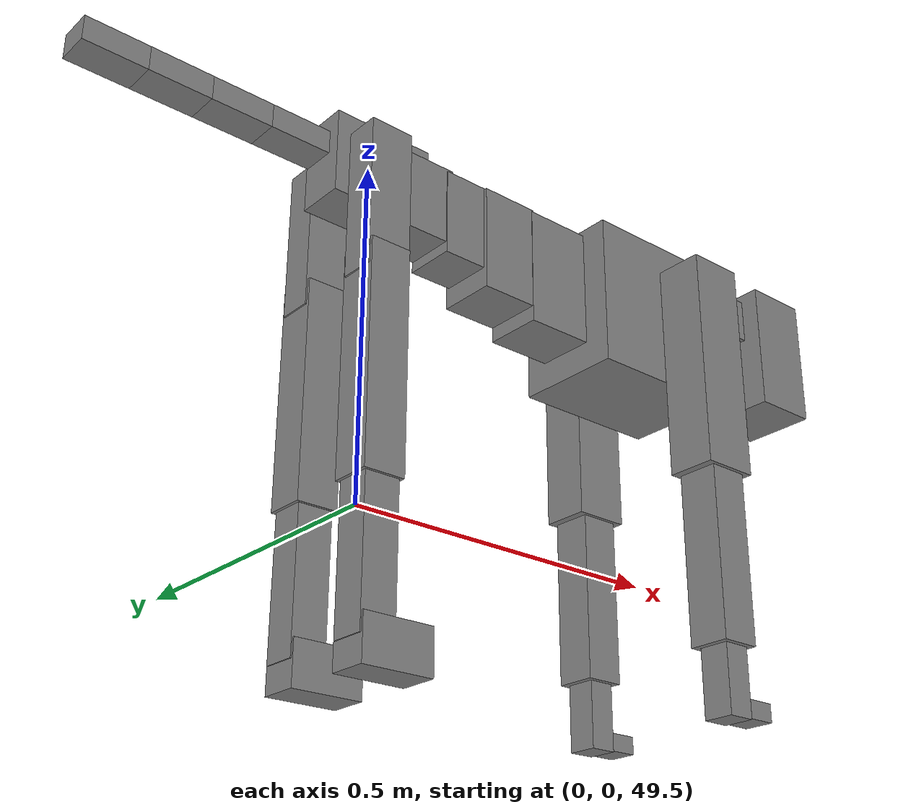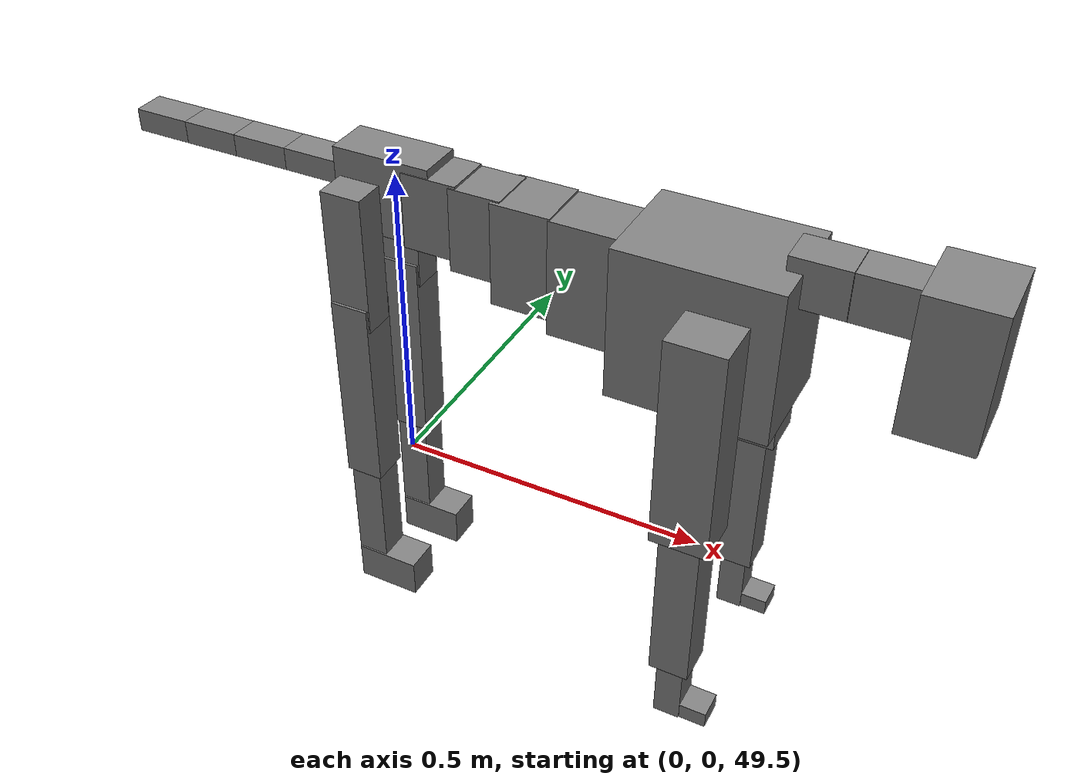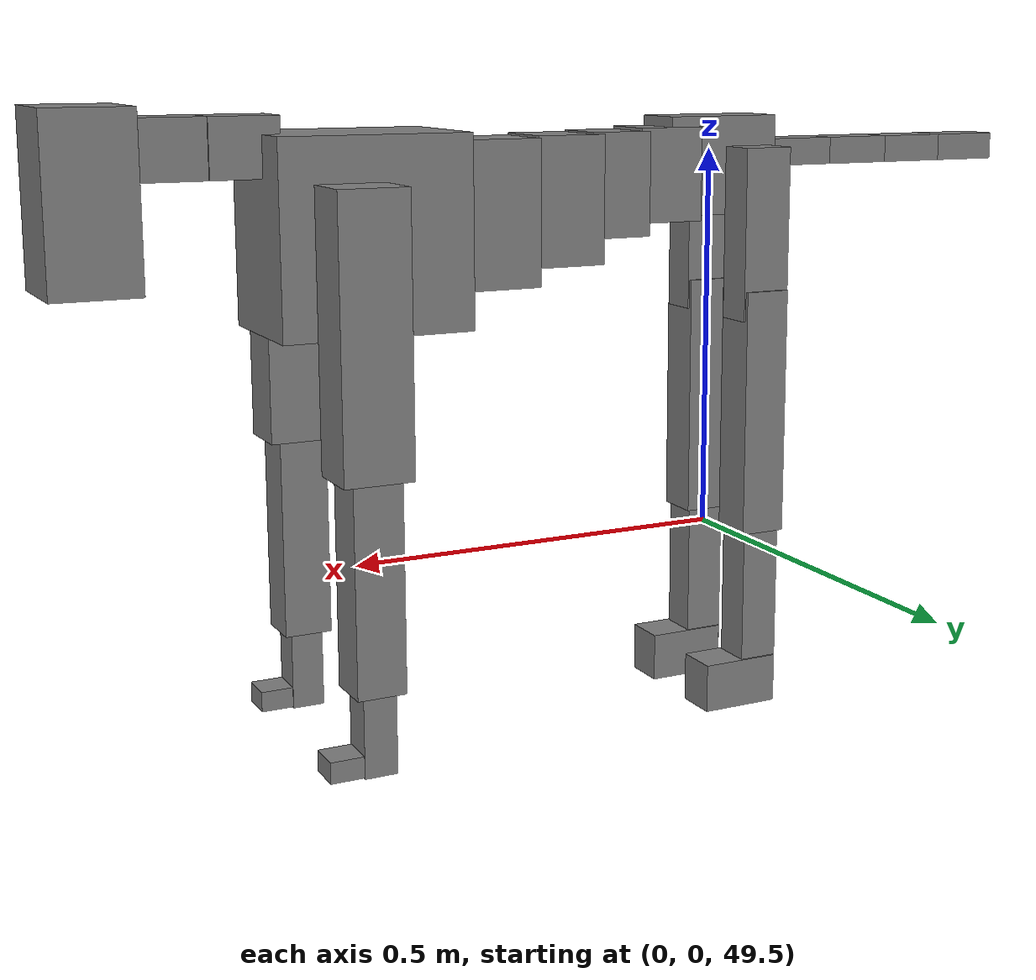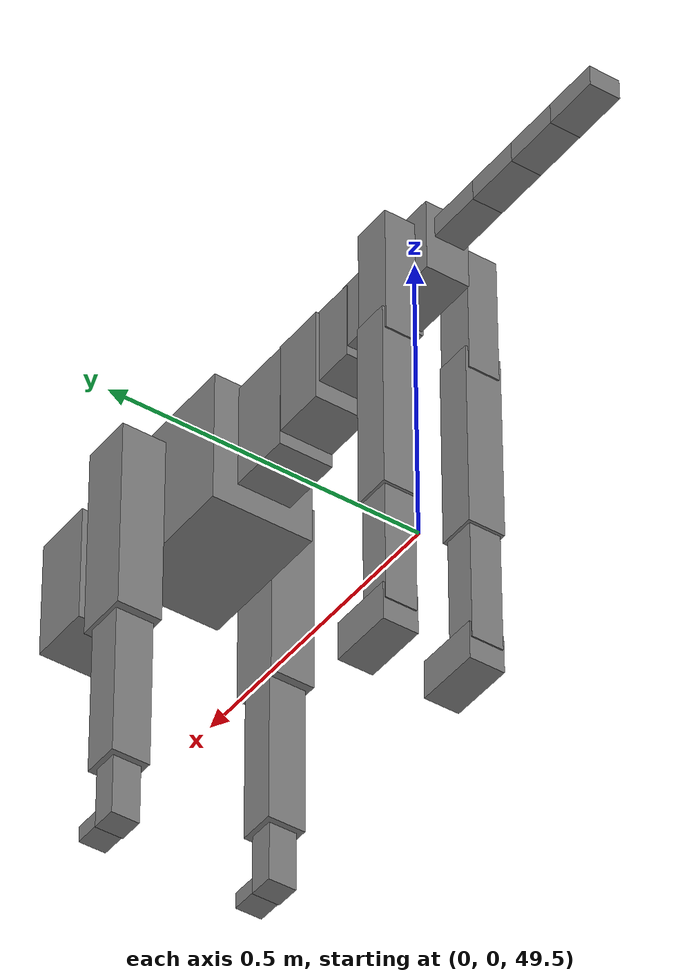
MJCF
<mujoco model="dog">

    <default>
        <joint armature="0.02" stiffness="1" damping="0.2" limited="true"/>
        <geom condim="3" friction="1 0.05 0.05" margin="0.01"/>
        <motor ctrllimited="true" ctrlrange="-1.0 1.0" forcelimited="true" gear="50"/>
    </default>

    <compiler inertiafromgeom="true" angle="radian"/>

    <option timestep="0.016" iterations="50" tolerance="1e-10" solver="Newton" jacobian="dense" cone="pyramidal"/>

    <size nconmax="20000" njmax="60000" nstack="5000000"/>
    <visual>
        <map force="0.1" zfar="30"/>
        <rgba haze="0.15 0.25 0.35 1"/>
        <quality shadowsize="2048"/>
        <global offwidth="800" offheight="800"/>
    </visual>

    <asset>
        <texture type="skybox" builtin="gradient" rgb1="0.3 0.5 0.7" rgb2="0 0 0" width="512" height="512"/>
        <texture name="texplane" type="2d" builtin="checker" rgb1=".2 .3 .4" rgb2=".1 0.15 0.2" width="512" height="512"
                 mark="cross" markrgb=".8 .8 .8"/>
        <texture name="texgeom" type="cube" builtin="flat" mark="cross" width="127" height="1278" rgb1="0.8 0.6 0.4"
                 rgb2="0.8 0.6 0.4" markrgb="1 1 1" random="0.01"/>

        <material name="matplane" reflectance="0.3" texture="texplane" texrepeat="1 1" texuniform="true"/>
        <material name="matgeom" texture="texgeom" texuniform="true" rgba="0.8 0.6 .4 1"/>
    </asset>

    <worldbody>
        <geom name="floor" pos="0 0 0" size="0 0 .25" type="plane" material="matplane" condim="3"/>

        <light directional="false" diffuse=".2 .2 .2" specular="0 0 0" pos="0 0 5" dir="0 0 -1" castshadow="false"/>
        <light mode="targetbodycom" target="torso" directional="false" diffuse=".8 .8 .8" specular="0.3 0.3 0.3"
               pos="0 0 4.0" dir="0 0 -1"/>

        <body name="root" pos="0 0 50">
            <freejoint name="root_1"/>
            <geom type="box" pos="0 0 -0.02" size="0.0774  0.0358  0.063" density="2030"/>

            <body name="spine1" pos="0.054 0 0">
                <joint name="spine1_y" axis="0 1 0" range="0 0.7" limited="true"/>
                <geom type="box" pos="0.02375 0 -0.03" size="0.04375  0.0375  0.05985" density="2030"/>

                <body name="spine2" pos="0.0612 0 0">
                    <joint name="spine2_y" axis="0 1 0" range="-0.15 0.15" limited="true"/>
                    <geom type="box" pos="0.03555  0  -0.04" size="0.04055  0.039  0.06615" density="2030"/>

                    <body name="spine3" pos="0.0730 0 0">
                        <joint name="spine3_y" axis="0 1 0" range="-0.15 0.15" limited="true"/>
                        <geom type="box" pos="0.03555  0  -0.057" size="0.04555  0.0445  0.081" density="2030"/>

                        <body name="spine4" pos="0.0780 0 0">
                            <joint name="spine4_y" axis="0 1 0" range="-0.15 0.15" limited="true"/>
                            <geom type="box" pos="0.05265  0  -0.07" size="0.05265  0.045  0.09135" density="2030"/>

                            <body name="torso" pos="0.1082 0 0">
                                <joint name="torso_y" axis="0 1 0" range="-0.15 0.15" limited="true"/>
                                <geom type="box" pos="0.11925  0  -0.085" size="0.11925  0.085  0.11745"
                                      density="2030"/>

                                <body name="neck1" pos="0.2160  0   0.0180">
                                    <joint name="neck1_y" axis="0 1 0" range="-1.2  -1" limited="true"/>
                                    <geom type="box" pos="0.0423  0  0" size="0.0423  0.03  0.036" density="2325"/>

                                    <body name="neck2" pos="0.0853  0  0">
                                        <joint name="neck2_y" axis="0 1 0" range="0.1  0" limited="true"/>
                                        <geom type="box" pos="0.0423  0  0" size="0.0423  0.03  0.036" density="2325"/>

                                        <body name="head" pos="0.0853  0  0">
                                            <joint name="head_y" axis="0 1 0" range="-0.3  -0.2" limited="true"/>
                                            <geom type="box" pos="0.0531  0  -0.055" size="0.0531  0.06  0.1044"
                                                  density="4030"/>

                                        </body>
                                    </body>
                                </body>

                                <body name="front_shoulder" pos="0.156  0   -0.0480">
                                    <joint name="front_shoulder_y" axis="0 1 0" range="-1 1.5" limited="true"/>
                                    <geom type="box" pos="0 0.13 -0.1413" size="0.0433  0.0370  0.1679" density="1158"/>
                                    <geom type="box" pos="0 -0.13 -0.1413" size="0.0433  0.0370  0.1679"
                                          density="1158"/>

                                    <body name="front_elbow" pos="0  0  -0.2826">
                                        <joint name="front_elbow_y" axis="0 1 0" range="-2 0" limited="true"/>
                                        <geom type="box" pos="0 0.13 -0.1409" size="0.0305  0.0311  0.1409"
                                              density="1081"/>
                                        <geom type="box" pos="0 -0.13 -0.1409" size="0.0305  0.0311  0.1409"
                                              density="1081"/>

                                        <body name="front_wrist" pos="0  0  -0.2817">
                                            <joint name="front_wrist_y" axis="0 1 0" range="-0.2 0" limited="true"/>
                                            <geom type="box" pos="0 0.13 -0.0435" size="0.0206  0.0229  0.0566"
                                                  density="1664"/>
                                            <geom type="box" pos="0 -0.13 -0.0435" size="0.0206  0.0229  0.0566"
                                                  density="1664"/>

                                            <body name="front_finger_end" pos="0  0  -0.0870">
                                                <joint name="front_finger_y" axis="0 1 0" range="-0.4 1"
                                                       limited="true"/>
                                                <geom type="box" pos="0.0221  0.13  0.0018"
                                                      size="0.0406  0.0221  0.0132" density="1515"/>
                                                <geom type="box" pos="0.0221  -0.13  0.0018"
                                                      size="0.0406  0.0221  0.0132" density="1515"/>

                                            </body>

                                        </body>
                                    </body>
                                </body>

                            </body>
                        </body>
                    </body>
                </body>
            </body>

            <body name="back_hip" pos="-0.03 0 -0.018">
                <joint name="back_hip_y" axis="0 1 0" range="-1.5 0.3" limited="true"/>
                <geom type="box" pos="0 0.07 -0.0877" size="0.0323  0.0254  0.1105" density="1154"/>
                <geom type="box" pos="0 -0.07 -0.0877" size="0.0323  0.0254  0.1105" density="1154"/>

                <body name="back_knee" pos="0  0  -0.1754">
                    <joint name="back_knee_y" axis="0 1 0" range="0 2.8" limited="true"/>
                    <geom type="box" pos="0 0.07 -0.1441" size="0.0301  0.0297  0.1596" density="1227"/>
                    <geom type="box" pos="0 -0.07 -0.1441" size="0.0301  0.0297  0.1596" density="1227"/>

                    <body name="back_ankle" pos="0  0  -0.2881">
                        <joint name="back_ankle_y" axis="0 1 0" range="-2.2 0" limited="true"/>
                        <geom type="box" pos="0 0.07 -0.1018" size="0.0254  0.0254  0.1131" density="1284"/>
                        <geom type="box" pos="0 -0.07 -0.1018" size="0.0254  0.0254  0.1131" density="1284"/>

                        <body name="back_toe_end" pos="0  0  -0.2037">
                            <joint name="back_toe_y" axis="0 1 0" range="-0.4 1" limited="true"/>
                            <geom type="box" pos="0.0282  0.07  -0.0166" size="0.0517  0.0282  0.0316" density="1515"/>
                            <geom type="box" pos="0.0282  -0.07  -0.0166" size="0.0517  0.0282  0.0316" density="1515"/>

                        </body>
                    </body>
                </body>
            </body>

            <body name="tail1" pos="-0.074 0 -0.006">
                <joint name="tail1_y" axis="0 1 0" range="-0.2 0.2" limited="true"/>
                <geom type="box" pos="-0.0536  0  0" size="0.045  0.025  0.0175" density="1587"/>

                <body name="tail2" pos="-0.09 0 0">
                    <joint name="tail2_y" axis="0 1 0" range="-0.2 0.2" limited="true"/>
                    <geom type="box" pos="-0.0536  0  0" size="0.045  0.025  0.0175" density="1587"/>

                    <body name="tail3" pos="-0.09 0 0">
                        <joint name="tail3_y" axis="0 1 0" range="-0.2 0.2" limited="true"/>
                        <geom type="box" pos="-0.0536  0  0" size="0.045  0.025  0.0175" density="1587"/>

                        <body name="tail4" pos="-0.09 0 0">
                            <joint name="tail4_y" axis="0 1 0" range="-0.2 0.2" limited="true"/>
                            <geom type="box" pos="-0.0536  0  0" size="0.045  0.025  0.0175" density="1587"/>

                        </body>
                    </body>
                </body>
            </body>
        </body>
    </worldbody>

    <actuator>
        <motor joint="spine1_y" forcerange="-150 150     "/>
        <motor joint="spine2_y" forcerange="-150 150     "/>
        <motor joint="spine3_y" forcerange="-150 150     "/>
        <motor joint="spine4_y" forcerange="-150 150     "/>
        <motor joint="torso_y" forcerange="-150 150     "/>
        <motor joint="neck1_y" forcerange="-100 100       "/>
        <motor joint="neck2_y" forcerange="-100 100       "/>
        <motor joint="head_y" forcerange="-150 150       "/>
        <motor joint="front_shoulder_y" forcerange="-179.46 167.35"/>
        <motor joint="front_elbow_y" forcerange="-191.04 135.41"/>
        <motor joint="front_wrist_y" forcerange="-67.19 116.19"/>
        <motor joint="front_finger_y" forcerange="-50.87 27.18"/>
        <motor joint="back_hip_y" forcerange="-239.14 298.88"/>
        <motor joint="back_knee_y" forcerange="-390.39 241.71"/>
        <motor joint="back_angle_y" forcerange="-234.47 72.33"/>
        <motor joint="back_toe_y" forcerange="-125.52 20.10"/>
        <motor joint="tail1_y" forcerange="-50 50     "/>
        <motor joint="tail2_y" forcerange="-50 50     "/>
        <motor joint="tail3_y" forcerange="-50 50     "/>
        <motor joint="tail4_y" forcerange="-50 50     "/>
    </actuator>
</mujoco>
